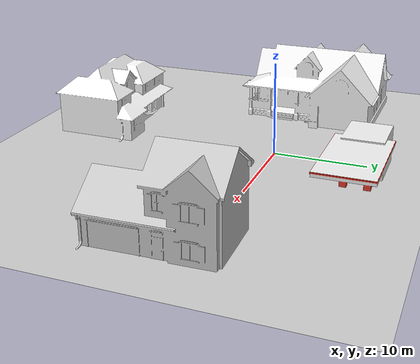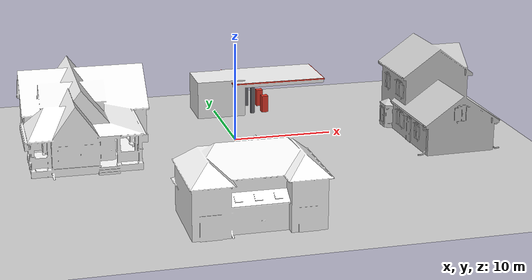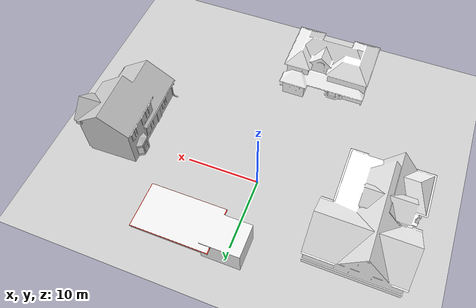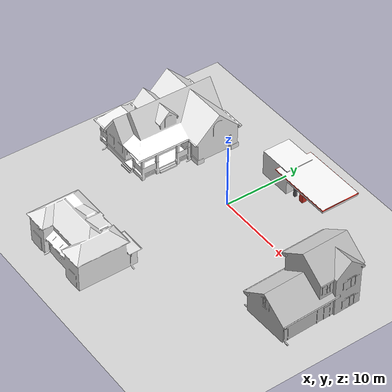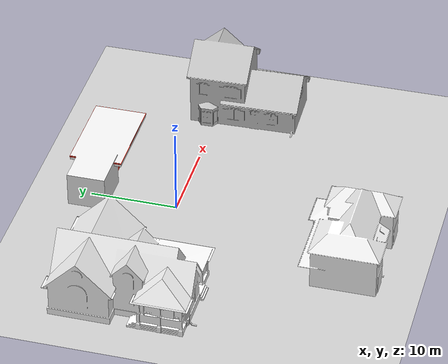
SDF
<sdf version="1.7">
 <world name="default">
  <light name="sun" type="directional">
   <pose>0 0 10 0 -0 0</pose>
   <diffuse>0.8 0.8 0.8 1</diffuse>
   <specular>0.2 0.2 0.2 1</specular>
   <attenuation>
    <range>1000</range>
    <constant>0.9</constant>
    <linear>0.01</linear>
    <quadratic>0.001</quadratic>
   </attenuation>
   <direction>-0.5 0.1 -0.9</direction>
   <spot><inner_angle>0</inner_angle><outer_angle>0</outer_angle><falloff>0</falloff></spot>
  </light>
  <model name="ground_plane">
   <static>1</static>
   <link name="link">
    <collision name="collision">
     <geometry><plane><normal>0 0 1</normal><size>100 100</size></plane></geometry>
     <surface><friction><ode><mu>100</mu><mu2>50</mu2></ode></friction></surface>
    </collision>
    <visual name="visual">
     <cast_shadows>0</cast_shadows>
     <geometry><plane><normal>0 0 1</normal><size>100 100</size></plane></geometry>
     <material>
      <script><uri>file://media/materials/scripts/gazebo.material</uri><name>Gazebo/Grey</name></script>
     </material>
    </visual>
   </link>
  </model>
  <gravity>0 0 -9.8</gravity>
  <magnetic_field>6e-06 2.3e-05 -4.2e-05</magnetic_field>
  <atmosphere type="adiabatic"/>
  <physics type="ode">
   <max_step_size>0.001</max_step_size>
   <real_time_factor>1</real_time_factor>
   <real_time_update_rate>1000</real_time_update_rate>
  </physics>
  <scene><ambient>0.4 0.4 0.4 1</ambient><background>0.7 0.7 0.7 1</background><shadows>1</shadows></scene>
  <audio><device>default</device></audio>
  <spherical_coordinates>
   <surface_model>EARTH_WGS84</surface_model>
   <latitude_deg>0</latitude_deg>
   <longitude_deg>0</longitude_deg>
   <elevation>0</elevation>
   <heading_deg>0</heading_deg>
  </spherical_coordinates>
  <model name="Gas Station">
   <static>1</static>
   <link name="link">
    <collision name="collision">
     <geometry><mesh><uri>model://gas_station/meshes/gas_station.dae</uri></mesh></geometry>
    </collision>
    <visual name="visual">
     <geometry><mesh><uri>model://gas_station/meshes/gas_station.dae</uri></mesh></geometry>
     <material>
      <script>
       <uri>model://gas_station/materials/scripts</uri>
       <uri>model://gas_station/materials/textures</uri>
       <name>GasStation/Diffuse</name>
      </script>
      <shader type="normal_map_tangent_space"><normal_map>GasStation_Normal.png</normal_map></shader>
     </material>
    </visual>
   </link>
   <pose>4.09183 9.8889 0 0 -0 0</pose>
  </model>
  <model name="House 1">
   <static>1</static>
   <link name="link">
    <collision name="collision">
     <geometry><mesh><uri>model://house_1/meshes/house_1.dae</uri><scale>1.5 1.5 1.5</scale></mesh></geometry>
    </collision>
    <visual name="visual">
     <geometry><mesh><uri>model://house_1/meshes/house_1.dae</uri><scale>1.5 1.5 1.5</scale></mesh></geometry>
     <material>
      <script>
       <uri>model://house_1/materials/scripts</uri>
       <uri>model://house_1/materials/textures</uri>
       <name>House_1/Diffuse</name>
      </script>
      <shader type="normal_map_tangent_space"><normal_map>House_1_Normal.png</normal_map></shader>
     </material>
    </visual>
   </link>
   <pose>-15.5229 1.03701 0 0 -0 1.56626</pose>
  </model>
  <model name="House 2">
   <static>1</static>
   <link name="link">
    <collision name="collision">
     <geometry><mesh><uri>model://house_2/meshes/house_2.dae</uri><scale>1.5 1.5 1.5</scale></mesh></geometry>
    </collision>
    <visual name="visual">
     <geometry><mesh><uri>model://house_2/meshes/house_2.dae</uri><scale>1.5 1.5 1.5</scale></mesh></geometry>
     <material>
      <script>
       <uri>model://house_2/materials/scripts</uri>
       <uri>model://house_2/materials/textures</uri>
       <uri>model://house_1/materials/textures</uri>
       <name>House_2/Diffuse</name>
      </script>
      <shader type="normal_map_tangent_space">
       <normal_map>model://house_1/materials/textures/House_1_Normal.png</normal_map>
      </shader>
     </material>
    </visual>
   </link>
   <pose>-4.65336 -21.2324 0 0 -0 0</pose>
  </model>
  <model name="House 3">
   <static>1</static>
   <link name="link">
    <collision name="collision">
     <geometry><mesh><uri>model://house_3/meshes/house_3.dae</uri><scale>1.5 1.5 1.5</scale></mesh></geometry>
    </collision>
    <visual name="visual">
     <geometry><mesh><uri>model://house_3/meshes/house_3.dae</uri><scale>1.5 1.5 1.5</scale></mesh></geometry>
     <material>
      <script>
       <uri>model://house_3/materials/scripts</uri>
       <uri>model://house_3/materials/textures</uri>
       <uri>model://house_1/materials/textures</uri>
       <name>House_3/Diffuse</name>
      </script>
      <shader type="normal_map_tangent_space">
       <normal_map>model://house_1/materials/textures/House_1_Normal.png</normal_map>
      </shader>
     </material>
    </visual>
   </link>
   <pose>20.4789 -3.71274 0 0 0 -1.54311</pose>
  </model>
 </world>
</sdf>
